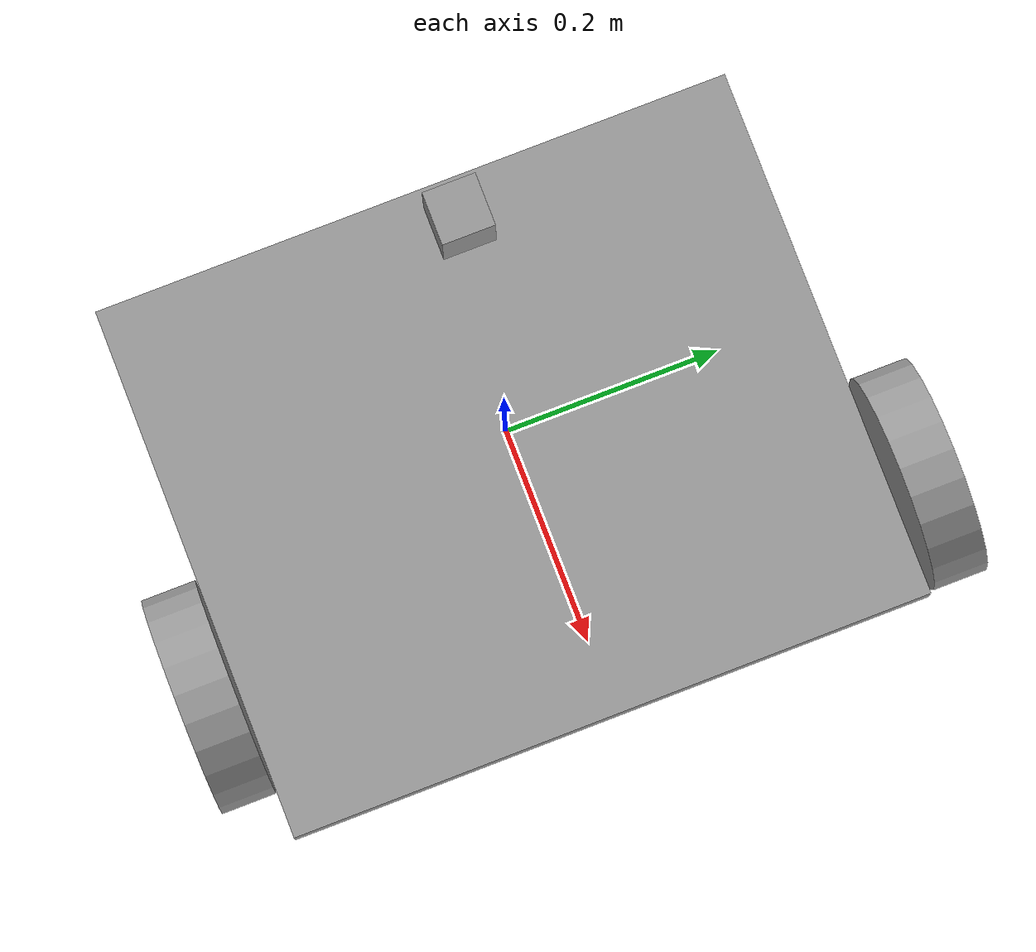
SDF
<?xml version='1.0'?>
<sdf version='1.6'>
  <model name='auc_robot'>
    <link name='link_4'>
      <inertial>
        <mass>1</mass>
        <inertia>
          <ixx>0.166667</ixx>
          <ixy>0</ixy>
          <ixz>0</ixz>
          <iyy>0.166667</iyy>
          <iyz>0</iyz>
          <izz>0.166667</izz>
        </inertia>
        <pose frame=''>0 0 0 0 -0 0</pose>
      </inertial>
      <pose frame=''>0.018964 -0.002066 -0.01594 0 -0 0</pose>
      <gravity>1</gravity>
      <self_collide>0</self_collide>
      <kinematic>0</kinematic>
      <enable_wind>0</enable_wind>
      <visual name='visual'>
        <pose frame=''>0 0 0 0 -0 0</pose>
        <geometry>
          <box>
            <size>0.5 0.6 0.03</size>
          </box>
        </geometry>
        <material>
          <lighting>1</lighting>
          <script>
            <uri>file://media/materials/scripts/gazebo.material</uri>
            <name>Gazebo/Grey</name>
          </script>
          <shader type='pixel'>
            <normal_map>__default__</normal_map>
          </shader>
          <ambient>0.3 0.3 0.3 1</ambient>
          <diffuse>0.7 0.7 0.7 1</diffuse>
          <specular>0.01 0.01 0.01 1</specular>
          <emissive>0 0 0 1</emissive>
        </material>
        <transparency>0</transparency>
        <cast_shadows>1</cast_shadows>
      </visual>
      <collision name='collision'>
        <laser_retro>0</laser_retro>
        <max_contacts>10</max_contacts>
        <pose frame=''>0 0 0 0 -0 0</pose>
        <geometry>
          <box>
            <size>0.5 0.6 0.03</size>
          </box>
        </geometry>
        <surface>
          <friction>
            <ode>
              <mu>1</mu>
              <mu2>1</mu2>
              <fdir1>0 0 0</fdir1>
              <slip1>0</slip1>
              <slip2>0</slip2>
            </ode>
            <torsional>
              <coefficient>1</coefficient>
              <patch_radius>0</patch_radius>
              <surface_radius>0</surface_radius>
              <use_patch_radius>1</use_patch_radius>
              <ode>
                <slip>0</slip>
              </ode>
            </torsional>
          </friction>
          <bounce>
            <restitution_coefficient>0</restitution_coefficient>
            <threshold>1e+06</threshold>
          </bounce>
          <contact>
            <collide_without_contact>0</collide_without_contact>
            <collide_without_contact_bitmask>1</collide_without_contact_bitmask>
            <collide_bitmask>1</collide_bitmask>
            <ode>
              <soft_cfm>0</soft_cfm>
              <soft_erp>0.2</soft_erp>
              <kp>1e+13</kp>
              <kd>1</kd>
              <max_vel>0.01</max_vel>
              <min_depth>0</min_depth>
            </ode>
            <bullet>
              <split_impulse>1</split_impulse>
              <split_impulse_penetration_threshold>-0.01</split_impulse_penetration_threshold>
              <soft_cfm>0</soft_cfm>
              <soft_erp>0.2</soft_erp>
              <kp>1e+13</kp>
              <kd>1</kd>
            </bullet>
          </contact>
        </surface>
      </collision>
    </link>
    <link name='link_5'>
      <inertial>
        <mass>1</mass>
        <inertia>
          <ixx>0.145833</ixx>
          <ixy>0</ixy>
          <ixz>0</ixz>
          <iyy>0.145833</iyy>
          <iyz>0</iyz>
          <izz>0.125</izz>
        </inertia>
        <pose frame=''>0 0 0 0 1.5707 0</pose>
      </inertial>
      <pose frame=''>0.128964 -0.327079 0.026554 1.5707 -0 0</pose>
      <gravity>1</gravity>
      <self_collide>0</self_collide>
      <kinematic>0</kinematic>
      <enable_wind>0</enable_wind>
      <visual name='visual'>
        <pose frame=''>0 0 0 0 -0 0</pose>
        <geometry>
          <cylinder>
            <radius>0.1</radius>
            <length>0.05</length>
          </cylinder>
        </geometry>
        <material>
          <lighting>1</lighting>
          <script>
            <uri>file://media/materials/scripts/gazebo.material</uri>
            <name>Gazebo/Grey</name>
          </script>
          <shader type='pixel'>
            <normal_map>__default__</normal_map>
          </shader>
          <ambient>0.3 0.3 0.3 1</ambient>
          <diffuse>0.7 0.7 0.7 1</diffuse>
          <specular>0.01 0.01 0.01 1</specular>
          <emissive>0 0 0 1</emissive>
        </material>
        <transparency>0</transparency>
        <cast_shadows>1</cast_shadows>
      </visual>
      <collision name='collision'>
        <laser_retro>0</laser_retro>
        <max_contacts>10</max_contacts>
        <pose frame=''>0 0 0 0 -0 0</pose>
        <geometry>
          <cylinder>
            <radius>0.1</radius>
            <length>0.05</length>
          </cylinder>
        </geometry>
        <surface>
          <friction>
            <ode>
              <mu>1</mu>
              <mu2>1</mu2>
              <fdir1>0 0 0</fdir1>
              <slip1>0</slip1>
              <slip2>0</slip2>
            </ode>
            <torsional>
              <coefficient>1</coefficient>
              <patch_radius>0</patch_radius>
              <surface_radius>0</surface_radius>
              <use_patch_radius>1</use_patch_radius>
              <ode>
                <slip>0</slip>
              </ode>
            </torsional>
          </friction>
          <bounce>
            <restitution_coefficient>0</restitution_coefficient>
            <threshold>1e+06</threshold>
          </bounce>
          <contact>
            <collide_without_contact>0</collide_without_contact>
            <collide_without_contact_bitmask>1</collide_without_contact_bitmask>
            <collide_bitmask>1</collide_bitmask>
            <ode>
              <soft_cfm>0</soft_cfm>
              <soft_erp>0.2</soft_erp>
              <kp>1e+13</kp>
              <kd>1</kd>
              <max_vel>0.01</max_vel>
              <min_depth>0</min_depth>
            </ode>
            <bullet>
              <split_impulse>1</split_impulse>
              <split_impulse_penetration_threshold>-0.01</split_impulse_penetration_threshold>
              <soft_cfm>0</soft_cfm>
              <soft_erp>0.2</soft_erp>
              <kp>1e+13</kp>
              <kd>1</kd>
            </bullet>
          </contact>
        </surface>
      </collision>
    </link>
    <link name='link_5_clone'>
      <inertial>
        <mass>1</mass>
        <inertia>
          <ixx>0.145833</ixx>
          <ixy>0</ixy>
          <ixz>0</ixz>
          <iyy>0.145833</iyy>
          <iyz>0</iyz>
          <izz>0.125</izz>
        </inertia>
        <pose frame=''>0 0 0 0 1.5707 0</pose>
      </inertial>
      <pose frame=''>0.168964 0.322944 0.024057 1.5707 -0 0</pose>
      <gravity>1</gravity>
      <self_collide>0</self_collide>
      <kinematic>0</kinematic>
      <enable_wind>0</enable_wind>
      <visual name='visual'>
        <pose frame=''>0 0 0 0 -0 0</pose>
        <geometry>
          <cylinder>
            <radius>0.1</radius>
            <length>0.05</length>
          </cylinder>
        </geometry>
        <material>
          <lighting>1</lighting>
          <script>
            <uri>file://media/materials/scripts/gazebo.material</uri>
            <name>Gazebo/Grey</name>
          </script>
          <shader type='pixel'>
            <normal_map>__default__</normal_map>
          </shader>
          <ambient>0.3 0.3 0.3 1</ambient>
          <diffuse>0.7 0.7 0.7 1</diffuse>
          <specular>0.01 0.01 0.01 1</specular>
          <emissive>0 0 0 1</emissive>
        </material>
        <transparency>0</transparency>
        <cast_shadows>1</cast_shadows>
      </visual>
      <collision name='collision'>
        <laser_retro>0</laser_retro>
        <max_contacts>10</max_contacts>
        <pose frame=''>0 0 0 0 -0 0</pose>
        <geometry>
          <cylinder>
            <radius>0.1</radius>
            <length>0.05</length>
          </cylinder>
        </geometry>
        <surface>
          <friction>
            <ode>
              <mu>1</mu>
              <mu2>1</mu2>
              <fdir1>0 0 0</fdir1>
              <slip1>0</slip1>
              <slip2>0</slip2>
            </ode>
            <torsional>
              <coefficient>1</coefficient>
              <patch_radius>0</patch_radius>
              <surface_radius>0</surface_radius>
              <use_patch_radius>1</use_patch_radius>
              <ode>
                <slip>0</slip>
              </ode>
            </torsional>
          </friction>
          <bounce>
            <restitution_coefficient>0</restitution_coefficient>
            <threshold>1e+06</threshold>
          </bounce>
          <contact>
            <collide_without_contact>0</collide_without_contact>
            <collide_without_contact_bitmask>1</collide_without_contact_bitmask>
            <collide_bitmask>1</collide_bitmask>
            <ode>
              <soft_cfm>0</soft_cfm>
              <soft_erp>0.2</soft_erp>
              <kp>1e+13</kp>
              <kd>1</kd>
              <max_vel>0.01</max_vel>
              <min_depth>0</min_depth>
            </ode>
            <bullet>
              <split_impulse>1</split_impulse>
              <split_impulse_penetration_threshold>-0.01</split_impulse_penetration_threshold>
              <soft_cfm>0</soft_cfm>
              <soft_erp>0.2</soft_erp>
              <kp>1e+13</kp>
              <kd>1</kd>
            </bullet>
          </contact>
        </surface>
      </collision>
    </link>
    <link name='link_8'>
      <inertial>
        <mass>1</mass>
        <inertia>
          <ixx>0.1</ixx>
          <ixy>0</ixy>
          <ixz>0</ixz>
          <iyy>0.1</iyy>
          <iyz>0</iyz>
          <izz>0.1</izz>
        </inertia>
        <pose frame=''>0 0 0 0 -0 0</pose>
      </inertial>
      <pose frame=''>-0.128805 -0.022099 -0.075281 0 -0 0</pose>
      <gravity>1</gravity>
      <self_collide>0</self_collide>
      <kinematic>0</kinematic>
      <enable_wind>0</enable_wind>
      <visual name='visual'>
        <pose frame=''>0 0 0 0 -0 0</pose>
        <geometry>
          <sphere>
            <radius>0.02</radius>
          </sphere>
        </geometry>
        <material>
          <lighting>1</lighting>
          <script>
            <uri>file://media/materials/scripts/gazebo.material</uri>
            <name>Gazebo/Grey</name>
          </script>
          <shader type='pixel'>
            <normal_map>__default__</normal_map>
          </shader>
          <ambient>0.3 0.3 0.3 1</ambient>
          <diffuse>0.7 0.7 0.7 1</diffuse>
          <specular>0.01 0.01 0.01 1</specular>
          <emissive>0 0 0 1</emissive>
        </material>
        <transparency>0</transparency>
        <cast_shadows>1</cast_shadows>
      </visual>
      <collision name='collision'>
        <laser_retro>0</laser_retro>
        <max_contacts>10</max_contacts>
        <pose frame=''>0 0 0 0 -0 0</pose>
        <geometry>
          <sphere>
            <radius>0.02</radius>
          </sphere>
        </geometry>
        <surface>
          <friction>
            <ode>
              <mu>1</mu>
              <mu2>1</mu2>
              <fdir1>0 0 0</fdir1>
              <slip1>0</slip1>
              <slip2>0</slip2>
            </ode>
            <torsional>
              <coefficient>1</coefficient>
              <patch_radius>0</patch_radius>
              <surface_radius>0</surface_radius>
              <use_patch_radius>1</use_patch_radius>
              <ode>
                <slip>0</slip>
              </ode>
            </torsional>
          </friction>
          <bounce>
            <restitution_coefficient>0</restitution_coefficient>
            <threshold>1e+06</threshold>
          </bounce>
          <contact>
            <collide_without_contact>0</collide_without_contact>
            <collide_without_contact_bitmask>1</collide_without_contact_bitmask>
            <collide_bitmask>1</collide_bitmask>
            <ode>
              <soft_cfm>0</soft_cfm>
              <soft_erp>0.2</soft_erp>
              <kp>1e+13</kp>
              <kd>1</kd>
              <max_vel>0.01</max_vel>
              <min_depth>0</min_depth>
            </ode>
            <bullet>
              <split_impulse>1</split_impulse>
              <split_impulse_penetration_threshold>-0.01</split_impulse_penetration_threshold>
              <soft_cfm>0</soft_cfm>
              <soft_erp>0.2</soft_erp>
              <kp>1e+13</kp>
              <kd>1</kd>
            </bullet>
          </contact>
        </surface>
      </collision>
    </link>
    <link name='link_9'>
      <inertial>
        <mass>1.44451</mass>
        <inertia>
          <ixx>0.000931962</ixx>
          <ixy>0</ixy>
          <ixz>0</ixz>
          <iyy>0.000931962</iyy>
          <iyz>0</iyz>
          <izz>0.000601879</izz>
        </inertia>
        <pose frame=''>0 0 0 0 -0 0</pose>
      </inertial>
      <pose frame=''>-0.188086 0.028298 0.04061 0 -0 0</pose>
      <gravity>1</gravity>
      <self_collide>0</self_collide>
      <kinematic>0</kinematic>
      <enable_wind>0</enable_wind>
      <visual name='visual'>
        <pose frame=''>0 0 0 0 -0 0</pose>
        <geometry>
          <box>
            <size>0.05 0.05 0.072402</size>
          </box>
        </geometry>
        <material>
          <lighting>1</lighting>
          <script>
            <uri>file://media/materials/scripts/gazebo.material</uri>
            <name>Gazebo/Grey</name>
          </script>
          <shader type='pixel'>
            <normal_map>__default__</normal_map>
          </shader>
          <ambient>0.3 0.3 0.3 1</ambient>
          <diffuse>0.7 0.7 0.7 1</diffuse>
          <specular>0.01 0.01 0.01 1</specular>
          <emissive>0 0 0 1</emissive>
        </material>
        <transparency>0</transparency>
        <cast_shadows>1</cast_shadows>
      </visual>
      <collision name='collision'>
        <laser_retro>0</laser_retro>
        <max_contacts>10</max_contacts>
        <pose frame=''>0 0 0 0 -0 0</pose>
        <geometry>
          <box>
            <size>0.05 0.05 0.072402</size>
          </box>
        </geometry>
        <surface>
          <friction>
            <ode>
              <mu>1</mu>
              <mu2>1</mu2>
              <fdir1>0 0 0</fdir1>
              <slip1>0</slip1>
              <slip2>0</slip2>
            </ode>
            <torsional>
              <coefficient>1</coefficient>
              <patch_radius>0</patch_radius>
              <surface_radius>0</surface_radius>
              <use_patch_radius>1</use_patch_radius>
              <ode>
                <slip>0</slip>
              </ode>
            </torsional>
          </friction>
          <bounce>
            <restitution_coefficient>0</restitution_coefficient>
            <threshold>1e+06</threshold>
          </bounce>
          <contact>
            <collide_without_contact>0</collide_without_contact>
            <collide_without_contact_bitmask>1</collide_without_contact_bitmask>
            <collide_bitmask>1</collide_bitmask>
            <ode>
              <soft_cfm>0</soft_cfm>
              <soft_erp>0.2</soft_erp>
              <kp>1e+13</kp>
              <kd>1</kd>
              <max_vel>0.01</max_vel>
              <min_depth>0</min_depth>
            </ode>
            <bullet>
              <split_impulse>1</split_impulse>
              <split_impulse_penetration_threshold>-0.01</split_impulse_penetration_threshold>
              <soft_cfm>0</soft_cfm>
              <soft_erp>0.2</soft_erp>
              <kp>1e+13</kp>
              <kd>1</kd>
            </bullet>
          </contact>
        </surface>
      </collision>
    </link>
    <joint name='link_4_JOINT_1' type='revolute'>
      <parent>link_4</parent>
      <child>link_5</child>
      <pose frame=''>0 0 0 0 -0 0</pose>
      <axis>
        <xyz>0 0 -1</xyz>
        <use_parent_model_frame>0</use_parent_model_frame>
        <limit>
          <lower>-1.79769e+308</lower>
          <upper>1.79769e+308</upper>
          <effort>-1</effort>
          <velocity>-1</velocity>
        </limit>
        <dynamics>
          <spring_reference>0</spring_reference>
          <spring_stiffness>0</spring_stiffness>
          <damping>0</damping>
          <friction>0</friction>
        </dynamics>
      </axis>
      <physics>
        <ode>
          <limit>
            <cfm>0</cfm>
            <erp>0.2</erp>
          </limit>
          <suspension>
            <cfm>0</cfm>
            <erp>0.2</erp>
          </suspension>
        </ode>
      </physics>
    </joint>
    <joint name='link_4_JOINT_3' type='revolute'>
      <parent>link_4</parent>
      <child>link_5_clone</child>
      <pose frame=''>0 0 0 0 -0 0</pose>
      <axis>
        <xyz>0 0 1</xyz>
        <use_parent_model_frame>0</use_parent_model_frame>
        <limit>
          <lower>-1.79769e+308</lower>
          <upper>1.79769e+308</upper>
          <effort>-1</effort>
          <velocity>-1</velocity>
        </limit>
        <dynamics>
          <spring_reference>0</spring_reference>
          <spring_stiffness>0</spring_stiffness>
          <damping>0</damping>
          <friction>0</friction>
        </dynamics>
      </axis>
      <physics>
        <ode>
          <limit>
            <cfm>0</cfm>
            <erp>0.2</erp>
          </limit>
          <suspension>
            <cfm>0</cfm>
            <erp>0.2</erp>
          </suspension>
        </ode>
      </physics>
    </joint>
    <joint name='link_4_JOINT_5' type='revolute'>
      <parent>link_4</parent>
      <child>link_8</child>
      <pose frame=''>0 0 0 0 -0 0</pose>
      <axis>
        <xyz>1 0 0</xyz>
        <use_parent_model_frame>0</use_parent_model_frame>
        <limit>
          <lower>-1.79769e+308</lower>
          <upper>1.79769e+308</upper>
          <effort>-1</effort>
          <velocity>-1</velocity>
        </limit>
        <dynamics>
          <spring_reference>0</spring_reference>
          <spring_stiffness>0</spring_stiffness>
          <damping>0</damping>
          <friction>0</friction>
        </dynamics>
      </axis>
      <physics>
        <ode>
          <limit>
            <cfm>0</cfm>
            <erp>0.2</erp>
          </limit>
          <suspension>
            <cfm>0</cfm>
            <erp>0.2</erp>
          </suspension>
        </ode>
      </physics>
    </joint>
    <joint name='link_4_JOINT_6' type='revolute'>
      <parent>link_4</parent>
      <child>link_9</child>
      <pose frame=''>0 0 0 0 -0 0</pose>
      <axis>
        <xyz>1 0 0</xyz>
        <use_parent_model_frame>0</use_parent_model_frame>
        <limit>
          <lower>-1.79769e+308</lower>
          <upper>1.79769e+308</upper>
          <effort>-1</effort>
          <velocity>-1</velocity>
        </limit>
        <dynamics>
          <spring_reference>0</spring_reference>
          <spring_stiffness>0</spring_stiffness>
          <damping>0</damping>
          <friction>0</friction>
        </dynamics>
      </axis>
      <physics>
        <ode>
          <limit>
            <cfm>0</cfm>
            <erp>0.2</erp>
          </limit>
          <suspension>
            <cfm>0</cfm>
            <erp>0.2</erp>
          </suspension>
        </ode>
      </physics>
    </joint>
    <static>0</static>
    <allow_auto_disable>1</allow_auto_disable>
  </model>
</sdf>
